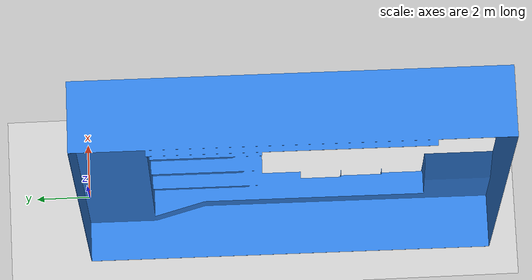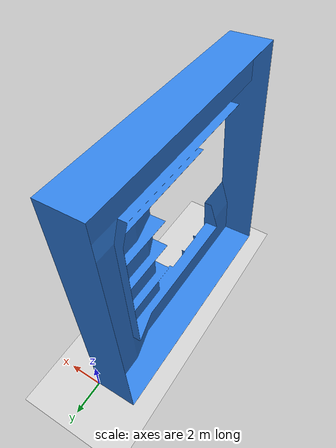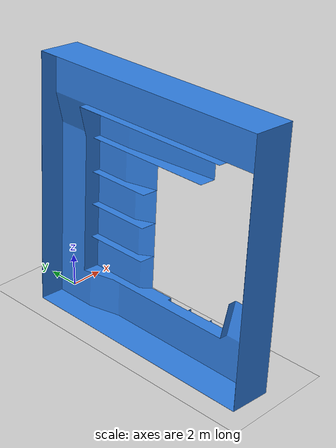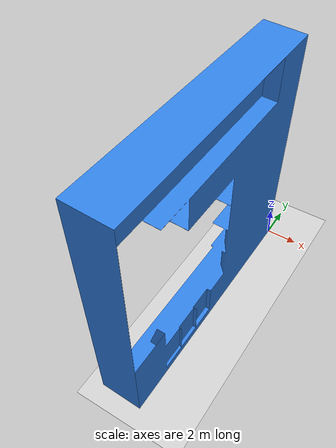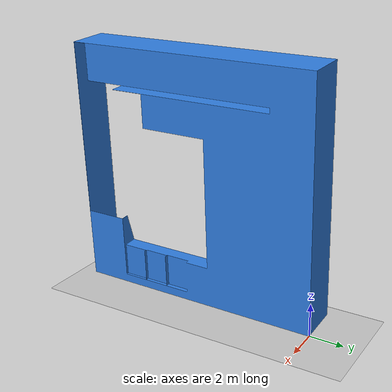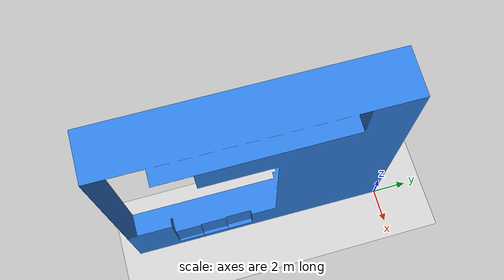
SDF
<?xml version="1.0"?>
<sdf version="1.5">

  <world name="default">

    <include>
      <uri>model://ground_plane</uri>
    </include>

    <include>
      <uri>model://sun</uri>
    </include>

    <scene>
      <ambient>0.4 0.4 0.4 1</ambient>
      <background>0.25 0.25 0.25 1</background>
      <shadows>false</shadows>
    </scene>

    <light type="directional" name="some_light">
      <diffuse>0.7 0.7 0.7 1</diffuse>
      <specular>1 1 1 1</specular>
      <direction>-1 -1 -1</direction>
    </light>

    <include>
      <!--need to put pose, static and other things in front of uri, otherwise those will not be reflected on the model-->
      <pose>0 0 0 0 -1.571 0</pose>
      <static>true</static>
      <uri>model://field</uri>
    </include>

  </world>

</sdf>

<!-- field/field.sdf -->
<sdf version="1.4">
    <model name="field">
        <link name="body">
        <visual name="visual">
            <pose>0 0 0 1.5632 0.0564 0.0013</pose>
            <material>
            <ambient>0.1882 0.4980 0.8862 1</ambient>
            <diffuse>0.1882 0.4980 0.8862 1</diffuse>
            <specular>0 0 0 0</specular>
            <emissive>0 0 0 1</emissive>
            <shader type="vertex">
                <normal_map>__default__</normal_map>
            </shader>
            </material>
            <geometry>
            <mesh>
                <uri>meshes/field.stl</uri>
                <scale>0.001 0.001 0.001</scale>
                </mesh>
            </geometry>
        </visual>
        <collision name='fieldcollision'>
            <geometry>
            <mesh>
                <uri>meshes/field.stl</uri>
                <scale>0.001 0.001 0.001</scale>
                </mesh>
            </geometry>
        </collision>
        </link>
    </model>
</sdf>
